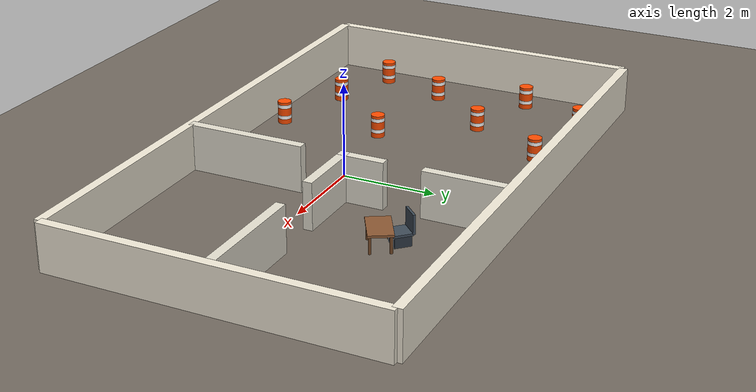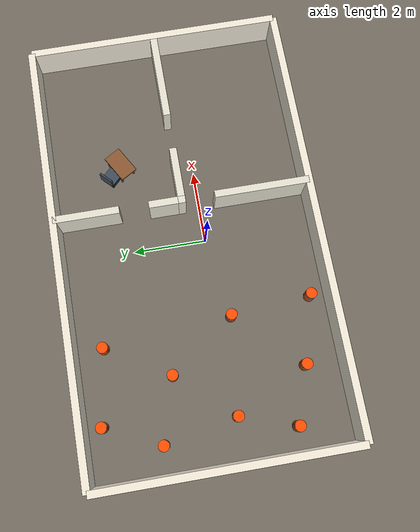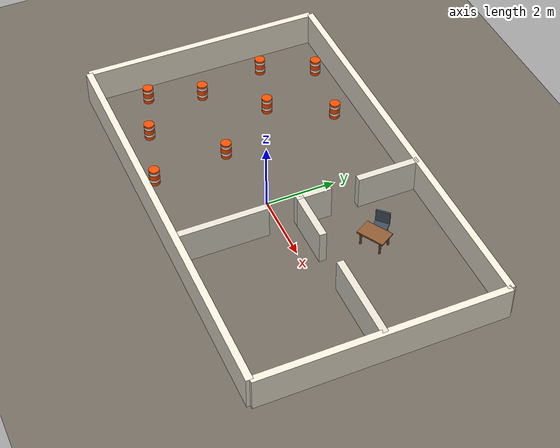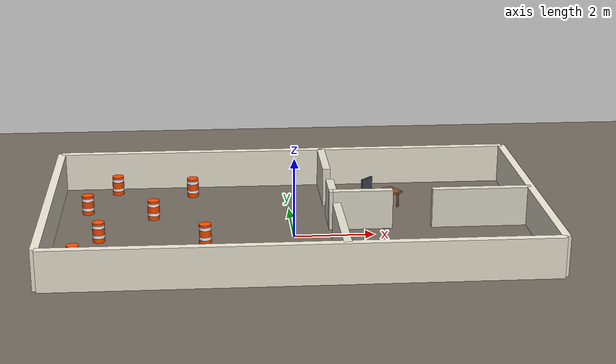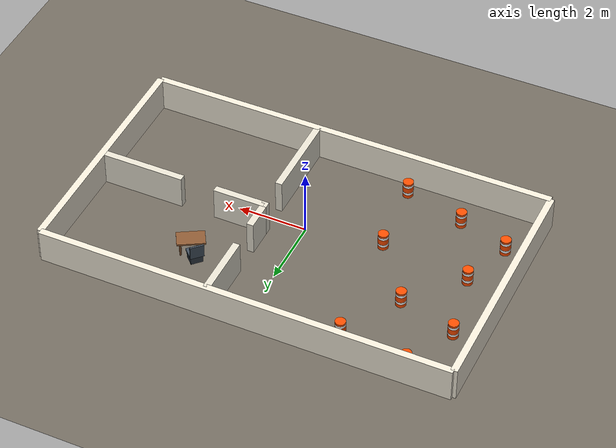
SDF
<?xml version='1.0'?>
<sdf version='1.8'>
  <world name='tilted_planner_hallway'>
    <physics name="1ms" type="ignored">
      <max_step_size>0.001</max_step_size>
      <real_time_factor>1.0</real_time_factor>
    </physics>

    <plugin filename="gz-sim-physics-system" name="gz::sim::systems::Physics"></plugin>
    <plugin filename="gz-sim-user-commands-system" name="gz::sim::systems::UserCommands"></plugin>
    <plugin filename="gz-sim-scene-broadcaster-system" name="gz::sim::systems::SceneBroadcaster"></plugin>

    <gravity>0 0 -9.8</gravity>

    <!-- Lighting -->
    <light type="directional" name="sun">
      <cast_shadows>true</cast_shadows>
      <pose>0 0 10 0 0 0</pose>
      <diffuse>1 1 0.9 1</diffuse>
      <specular>0.5 0.5 0.5 1</specular>
      <direction>-0.5 0.1 -0.9</direction>
    </light>

    <!-- Additional ambient light -->
    <light type="point" name="ambient_light">
      <pose>0 0 5 0 0 0</pose>
      <diffuse>0.4 0.4 0.5 1</diffuse>
      <specular>0.2 0.2 0.2 1</specular>
      <attenuation>
        <range>20</range>
      </attenuation>
    </light>

    <!-- Floor with better texture -->
    <model name='ground_plane'>
      <static>true</static>
      <link name='link'>
        <collision name='collision'>
          <geometry>
            <plane>
              <normal>0 0 1</normal>
              <size>20 20</size>
            </plane>
          </geometry>
        </collision>
        <visual name='visual'>
          <geometry>
            <plane>
              <normal>0 0 1</normal>
              <size>20 20</size>
            </plane>
          </geometry>
          <material>
            <ambient>0.45 0.42 0.38 1</ambient>
            <diffuse>0.45 0.42 0.38 1</diffuse>
            <specular>0.1 0.1 0.1 1</specular>
          </material>
        </visual>
      </link>
    </model>

    <!-- Outer Boundary - Top Wall (Cream/Beige) -->
    <model name='outer_top'>
      <static>true</static>
      <link name='link'>
        <pose>0 4 0.5 0 0 0</pose>
        <visual name='visual'>
          <geometry><box><size>12 0.2 1</size></box></geometry>
          <material>
            <ambient>0.95 0.92 0.85 1</ambient>
            <diffuse>0.95 0.92 0.85 1</diffuse>
            <specular>0.05 0.05 0.05 1</specular>
          </material>
        </visual>
        <collision name='collision'>
          <geometry><box><size>12 0.2 1</size></box></geometry>
        </collision>
      </link>
    </model>

    <!-- Outer Boundary - Bottom Wall -->
    <model name='outer_bottom'>
      <static>true</static>
      <link name='link'>
        <pose>0 -3 0.5 0 0 0</pose>
        <visual name='visual'>
          <geometry><box><size>12 0.2 1</size></box></geometry>
          <material>
            <ambient>0.95 0.92 0.85 1</ambient>
            <diffuse>0.95 0.92 0.85 1</diffuse>
            <specular>0.05 0.05 0.05 1</specular>
          </material>
        </visual>
        <collision name='collision'>
          <geometry><box><size>12 0.2 1</size></box></geometry>
        </collision>
      </link>
    </model>

    <!-- Outer Boundary - Right Wall -->
    <model name='outer_right'>
      <static>true</static>
      <link name='link'>
        <pose>6 0.5 0.5 0 0 0</pose>
        <visual name='visual'>
          <geometry><box><size>0.2 7 1</size></box></geometry>
          <material>
            <ambient>0.95 0.92 0.85 1</ambient>
            <diffuse>0.95 0.92 0.85 1</diffuse>
            <specular>0.05 0.05 0.05 1</specular>
          </material>
        </visual>
        <collision name='collision'>
          <geometry><box><size>0.2 7 1</size></box></geometry>
        </collision>
      </link>
    </model>

    <!-- Outer Boundary - Left Wall -->
    <model name='outer_left'>
      <static>true</static>
      <link name='link'>
        <pose>-6 0.5 0.5 0 0 0</pose>
        <visual name='visual'>
          <geometry><box><size>0.2 7 1</size></box></geometry>
          <material>
            <ambient>0.95 0.92 0.85 1</ambient>
            <diffuse>0.95 0.92 0.85 1</diffuse>
            <specular>0.05 0.05 0.05 1</specular>
          </material>
        </visual>
        <collision name='collision'>
          <geometry><box><size>0.2 7 1</size></box></geometry>
        </collision>
      </link>
    </model>

    <!-- Horizontal divider LEFT part -->
    <model name='horizontal_divider_left'>
      <static>true</static>
      <link name='link'>
        <pose>1.75 0.5 0.5 0 0 0</pose>
        <visual name='visual'>
          <geometry><box><size>1.5 0.2 1</size></box></geometry>
          <material>
            <ambient>0.9 0.88 0.82 1</ambient>
            <diffuse>0.9 0.88 0.82 1</diffuse>
            <specular>0.05 0.05 0.05 1</specular>
          </material>
        </visual>
        <collision name='collision'>
          <geometry><box><size>1.5 0.2 1</size></box></geometry>
        </collision>
      </link>
    </model>

    <!-- Horizontal divider RIGHT part -->
    <model name='horizontal_divider_right'>
      <static>true</static>
      <link name='link'>
        <pose>4.75 0.5 0.5 0 0 0</pose>
        <visual name='visual'>
          <geometry><box><size>2.5 0.2 1</size></box></geometry>
          <material>
            <ambient>0.9 0.88 0.82 1</ambient>
            <diffuse>0.9 0.88 0.82 1</diffuse>
            <specular>0.05 0.05 0.05 1</specular>
          </material>
        </visual>
        <collision name='collision'>
          <geometry><box><size>2.5 0.2 1</size></box></geometry>
        </collision>
      </link>
    </model>

    <!-- Vertical separator walls -->
    <model name='separator_bottom'>
      <static>true</static>
      <link name='link'>
        <pose>1 -1.7 0.5 0 0 0</pose>
        <visual name='visual'>
          <geometry><box><size>0.2 2.6 1</size></box></geometry>
          <material>
            <ambient>0.9 0.88 0.82 1</ambient>
            <diffuse>0.9 0.88 0.82 1</diffuse>
            <specular>0.05 0.05 0.05 1</specular>
          </material>
        </visual>
        <collision name='collision'>
          <geometry><box><size>0.2 2.6 1</size></box></geometry>
        </collision>
      </link>
    </model>

    <model name='separator_middle'>
      <static>true</static>
      <link name='link'>
        <pose>1 0.5 0.5 0 0 0</pose>
        <visual name='visual'>
          <geometry><box><size>0.2 0.2 1</size></box></geometry>
          <material>
            <ambient>0.9 0.88 0.82 1</ambient>
            <diffuse>0.9 0.88 0.82 1</diffuse>
            <specular>0.05 0.05 0.05 1</specular>
          </material>
        </visual>
        <collision name='collision'>
          <geometry><box><size>0.2 0.2 1</size></box></geometry>
        </collision>
      </link>
    </model>

    <model name='separator_between_doors'>
      <static>true</static>
      <link name='link'>
        <pose>1 1 0.5 0 0 0</pose>
        <visual name='visual'>
          <geometry><box><size>0.2 0.8 1</size></box></geometry>
          <material>
            <ambient>0.9 0.88 0.82 1</ambient>
            <diffuse>0.9 0.88 0.82 1</diffuse>
            <specular>0.05 0.05 0.05 1</specular>
          </material>
        </visual>
        <collision name='collision'>
          <geometry><box><size>0.2 0.8 1</size></box></geometry>
        </collision>
      </link>
    </model>

    <model name='separator_top'>
      <static>true</static>
      <link name='link'>
        <pose>1 3.1 0.5 0 0 0</pose>
        <visual name='visual'>
          <geometry><box><size>0.2 1.8 1</size></box></geometry>
          <material>
            <ambient>0.9 0.88 0.82 1</ambient>
            <diffuse>0.9 0.88 0.82 1</diffuse>
            <specular>0.05 0.05 0.05 1</specular>
          </material>
        </visual>
        <collision name='collision'>
          <geometry><box><size>0.2 1.8 1</size></box></geometry>
        </collision>
      </link>
    </model>

  <!-- Table -->
  <model name='table'>
    <static>true</static>
    <pose>2.5 2.0 0 0 0 0.524</pose>
    <link name='link'>
      <visual name='table_top'>
        <pose>0 0 0.4 0 0 0</pose>
        <geometry>
          <box>
            <size>0.8 0.5 0.05</size>
          </box>
        </geometry>
        <material>
          <ambient>0.55 0.35 0.2 1</ambient>
          <diffuse>0.55 0.35 0.2 1</diffuse>
          <specular>0.3 0.3 0.3 1</specular>
        </material>
      </visual>
      <visual name='leg1'>
        <pose>0.3 0.2 0.2 0 0 0</pose>
        <geometry>
          <cylinder>
            <radius>0.03</radius>
            <length>0.4</length>
          </cylinder>
        </geometry>
        <material>
          <ambient>0.45 0.28 0.15 1</ambient>
          <diffuse>0.45 0.28 0.15 1</diffuse>
        </material>
      </visual>
      <visual name='leg2'>
        <pose>-0.3 0.2 0.2 0 0 0</pose>
        <geometry>
          <cylinder>
            <radius>0.03</radius>
            <length>0.4</length>
          </cylinder>
        </geometry>
        <material>
          <ambient>0.45 0.28 0.15 1</ambient>
          <diffuse>0.45 0.28 0.15 1</diffuse>
        </material>
      </visual>
      <visual name='leg3'>
        <pose>0.3 -0.2 0.2 0 0 0</pose>
        <geometry>
          <cylinder>
            <radius>0.03</radius>
            <length>0.4</length>
          </cylinder>
        </geometry>
        <material>
          <ambient>0.45 0.28 0.15 1</ambient>
          <diffuse>0.45 0.28 0.15 1</diffuse>
        </material>
      </visual>
      <visual name='leg4'>
        <pose>-0.3 -0.2 0.2 0 0 0</pose>
        <geometry>
          <cylinder>
            <radius>0.03</radius>
            <length>0.4</length>
          </cylinder>
        </geometry>
        <material>
          <ambient>0.45 0.28 0.15 1</ambient>
          <diffuse>0.45 0.28 0.15 1</diffuse>
        </material>
      </visual>
    </link>
  </model>

  <!-- Chair -->
  <model name='chair'>
    <static>true</static>
    <pose>2.23 2.3 0 0 0 -0.785</pose>
    <link name='link'>
      <visual name='seat'>
        <pose>0 0 0.25 0 0 0</pose>
        <geometry>
          <box>
            <size>0.4 0.4 0.05</size>
          </box>
        </geometry>
        <material>
          <ambient>0.25 0.3 0.35 1</ambient>
          <diffuse>0.25 0.3 0.35 1</diffuse>
          <specular>0.2 0.2 0.2 1</specular>
        </material>
      </visual>
      <visual name='backrest'>
        <pose>-0.2 0 0.45 0 0 0</pose>
        <geometry>
          <box>
            <size>0.05 0.4 0.4</size>
          </box>
        </geometry>
        <material>
          <ambient>0.25 0.3 0.35 1</ambient>
          <diffuse>0.25 0.3 0.35 1</diffuse>
          <specular>0.2 0.2 0.2 1</specular>
        </material>
      </visual>
      <visual name='legs'>
        <pose>0 0 0.125 0 0 0</pose>
        <geometry>
          <box>
            <size>0.35 0.35 0.25</size>
          </box>
        </geometry>
        <material>
          <ambient>0.18 0.22 0.26 1</ambient>
          <diffuse>0.18 0.22 0.26 1</diffuse>
        </material>
      </visual>
    </link>
  </model>
    <!-- TRAFFIC CONES IN LEFT AREA (MAZE) -->

    <!-- Cone 1 -->
    <model name='cone1'>
      <static>true</static>
      <link name='link'>
        <pose>-4.5 3.5 0.25 0 0 0</pose>
        <visual name='cone_body'>
          <geometry>
            <cylinder>
              <radius>0.15</radius>
              <length>0.5</length>
            </cylinder>
          </geometry>
          <material>
            <ambient>1 0.3 0 1</ambient>
            <diffuse>1 0.3 0 1</diffuse>
            <specular>0.3 0.3 0.3 1</specular>
          </material>
        </visual>
        <visual name='white_stripe1'>
          <pose>0 0 0.15 0 0 0</pose>
          <geometry>
            <cylinder>
              <radius>0.151</radius>
              <length>0.08</length>
            </cylinder>
          </geometry>
          <material>
            <ambient>1 1 1 1</ambient>
            <diffuse>1 1 1 1</diffuse>
          </material>
        </visual>
        <visual name='white_stripe2'>
          <pose>0 0 -0.1 0 0 0</pose>
          <geometry>
            <cylinder>
              <radius>0.151</radius>
              <length>0.08</length>
            </cylinder>
          </geometry>
          <material>
            <ambient>1 1 1 1</ambient>
            <diffuse>1 1 1 1</diffuse>
          </material>
        </visual>
        <collision name='collision'>
          <geometry>
            <cylinder>
              <radius>0.15</radius>
              <length>0.5</length>
            </cylinder>
          </geometry>
        </collision>
      </link>
    </model>

    <!-- Cone 2 -->
    <model name='cone2'>
      <static>true</static>
      <link name='link'>
        <pose>-2.5 3.2 0.25 0 0 0</pose>
        <visual name='cone_body'>
          <geometry>
            <cylinder>
              <radius>0.15</radius>
              <length>0.5</length>
            </cylinder>
          </geometry>
          <material>
            <ambient>1 0.3 0 1</ambient>
            <diffuse>1 0.3 0 1</diffuse>
            <specular>0.3 0.3 0.3 1</specular>
          </material>
        </visual>
        <visual name='white_stripe1'>
          <pose>0 0 0.15 0 0 0</pose>
          <geometry>
            <cylinder>
              <radius>0.151</radius>
              <length>0.08</length>
            </cylinder>
          </geometry>
          <material>
            <ambient>1 1 1 1</ambient>
            <diffuse>1 1 1 1</diffuse>
          </material>
        </visual>
        <visual name='white_stripe2'>
          <pose>0 0 -0.1 0 0 0</pose>
          <geometry>
            <cylinder>
              <radius>0.151</radius>
              <length>0.08</length>
            </cylinder>
          </geometry>
          <material>
            <ambient>1 1 1 1</ambient>
            <diffuse>1 1 1 1</diffuse>
          </material>
        </visual>
        <collision name='collision'>
          <geometry>
            <cylinder>
              <radius>0.15</radius>
              <length>0.5</length>
            </cylinder>
          </geometry>
        </collision>
      </link>
    </model>

    <!-- Cone 3 -->
    <model name='cone3'>
      <static>true</static>
      <link name='link'>
        <pose>-5.2 2 0.25 0 0 0</pose>
        <visual name='cone_body'>
          <geometry>
            <cylinder>
              <radius>0.15</radius>
              <length>0.5</length>
            </cylinder>
          </geometry>
          <material>
            <ambient>1 0.3 0 1</ambient>
            <diffuse>1 0.3 0 1</diffuse>
            <specular>0.3 0.3 0.3 1</specular>
          </material>
        </visual>
        <visual name='white_stripe1'>
          <pose>0 0 0.15 0 0 0</pose>
          <geometry>
            <cylinder>
              <radius>0.151</radius>
              <length>0.08</length>
            </cylinder>
          </geometry>
          <material>
            <ambient>1 1 1 1</ambient>
            <diffuse>1 1 1 1</diffuse>
          </material>
        </visual>
        <visual name='white_stripe2'>
          <pose>0 0 -0.1 0 0 0</pose>
          <geometry>
            <cylinder>
              <radius>0.151</radius>
              <length>0.08</length>
            </cylinder>
          </geometry>
          <material>
            <ambient>1 1 1 1</ambient>
            <diffuse>1 1 1 1</diffuse>
          </material>
        </visual>
        <collision name='collision'>
          <geometry>
            <cylinder>
              <radius>0.15</radius>
              <length>0.5</length>
            </cylinder>
          </geometry>
        </collision>
      </link>
    </model>

    <!-- Cone 4 -->
    <model name='cone4'>
      <static>true</static>
      <link name='link'>
        <pose>-3.5 1.5 0.25 0 0 0</pose>
        <visual name='cone_body'>
          <geometry>
            <cylinder>
              <radius>0.15</radius>
              <length>0.5</length>
            </cylinder>
          </geometry>
          <material>
            <ambient>1 0.3 0 1</ambient>
            <diffuse>1 0.3 0 1</diffuse>
            <specular>0.3 0.3 0.3 1</specular>
          </material>
        </visual>
        <visual name='white_stripe1'>
          <pose>0 0 0.15 0 0 0</pose>
          <geometry>
            <cylinder>
              <radius>0.151</radius>
              <length>0.08</length>
            </cylinder>
          </geometry>
          <material>
            <ambient>1 1 1 1</ambient>
            <diffuse>1 1 1 1</diffuse>
          </material>
        </visual>
        <visual name='white_stripe2'>
          <pose>0 0 -0.1 0 0 0</pose>
          <geometry>
            <cylinder>
              <radius>0.151</radius>
              <length>0.08</length>
            </cylinder>
          </geometry>
          <material>
            <ambient>1 1 1 1</ambient>
            <diffuse>1 1 1 1</diffuse>
          </material>
        </visual>
        <collision name='collision'>
          <geometry>
            <cylinder>
              <radius>0.15</radius>
              <length>0.5</length>
            </cylinder>
          </geometry>
        </collision>
      </link>
    </model>

    <!-- Cone 5 -->
    <model name='cone5'>
      <static>true</static>
      <link name='link'>
        <pose>-4.8 0 0.25 0 0 0</pose>
        <visual name='cone_body'>
          <geometry>
            <cylinder>
              <radius>0.15</radius>
              <length>0.5</length>
            </cylinder>
          </geometry>
          <material>
            <ambient>1 0.3 0 1</ambient>
            <diffuse>1 0.3 0 1</diffuse>
            <specular>0.3 0.3 0.3 1</specular>
          </material>
        </visual>
        <visual name='white_stripe1'>
          <pose>0 0 0.15 0 0 0</pose>
          <geometry>
            <cylinder>
              <radius>0.151</radius>
              <length>0.08</length>
            </cylinder>
          </geometry>
          <material>
            <ambient>1 1 1 1</ambient>
            <diffuse>1 1 1 1</diffuse>
          </material>
        </visual>
        <visual name='white_stripe2'>
          <pose>0 0 -0.1 0 0 0</pose>
          <geometry>
            <cylinder>
              <radius>0.151</radius>
              <length>0.08</length>
            </cylinder>
          </geometry>
          <material>
            <ambient>1 1 1 1</ambient>
            <diffuse>1 1 1 1</diffuse>
          </material>
        </visual>
        <collision name='collision'>
          <geometry>
            <cylinder>
              <radius>0.15</radius>
              <length>0.5</length>
            </cylinder>
          </geometry>
        </collision>
      </link>
    </model>

    <!-- Cone 6 -->
    <model name='cone6'>
      <static>true</static>
      <link name='link'>
        <pose>-2.2 -0.3 0.25 0 0 0</pose>
        <visual name='cone_body'>
          <geometry>
            <cylinder>
              <radius>0.15</radius>
              <length>0.5</length>
            </cylinder>
          </geometry>
          <material>
            <ambient>1 0.3 0 1</ambient>
            <diffuse>1 0.3 0 1</diffuse>
            <specular>0.3 0.3 0.3 1</specular>
          </material>
        </visual>
        <visual name='white_stripe1'>
          <pose>0 0 0.15 0 0 0</pose>
          <geometry>
            <cylinder>
              <radius>0.151</radius>
              <length>0.08</length>
            </cylinder>
          </geometry>
          <material>
            <ambient>1 1 1 1</ambient>
            <diffuse>1 1 1 1</diffuse>
          </material>
        </visual>
        <visual name='white_stripe2'>
          <pose>0 0 -0.1 0 0 0</pose>
          <geometry>
            <cylinder>
              <radius>0.151</radius>
              <length>0.08</length>
            </cylinder>
          </geometry>
          <material>
            <ambient>1 1 1 1</ambient>
            <diffuse>1 1 1 1</diffuse>
          </material>
        </visual>
        <collision name='collision'>
          <geometry>
            <cylinder>
              <radius>0.15</radius>
              <length>0.5</length>
            </cylinder>
          </geometry>
        </collision>
      </link>
    </model>

    <!-- Cone 7 -->
    <model name='cone7'>
      <static>true</static>
      <link name='link'>
        <pose>-5.3 -1.5 0.25 0 0 0</pose>
        <visual name='cone_body'>
          <geometry>
            <cylinder>
              <radius>0.15</radius>
              <length>0.5</length>
            </cylinder>
          </geometry>
          <material>
            <ambient>1 0.3 0 1</ambient>
            <diffuse>1 0.3 0 1</diffuse>
            <specular>0.3 0.3 0.3 1</specular>
          </material>
        </visual>
        <visual name='white_stripe1'>
          <pose>0 0 0.15 0 0 0</pose>
          <geometry>
            <cylinder>
              <radius>0.151</radius>
              <length>0.08</length>
            </cylinder>
          </geometry>
          <material>
            <ambient>1 1 1 1</ambient>
            <diffuse>1 1 1 1</diffuse>
          </material>
        </visual>
        <visual name='white_stripe2'>
          <pose>0 0 -0.1 0 0 0</pose>
          <geometry>
            <cylinder>
              <radius>0.151</radius>
              <length>0.08</length>
            </cylinder>
          </geometry>
          <material>
            <ambient>1 1 1 1</ambient>
            <diffuse>1 1 1 1</diffuse>
          </material>
        </visual>
        <collision name='collision'>
          <geometry>
            <cylinder>
              <radius>0.15</radius>
              <length>0.5</length>
            </cylinder>
          </geometry>
        </collision>
      </link>
    </model>

    <!-- Cone 8 -->
    <model name='cone8'>
      <static>true</static>
      <link name='link'>
        <pose>-3.8 -2 0.25 0 0 0</pose>
        <visual name='cone_body'>
          <geometry>
            <cylinder>
              <radius>0.15</radius>
              <length>0.5</length>
            </cylinder>
          </geometry>
          <material>
            <ambient>1 0.3 0 1</ambient>
            <diffuse>1 0.3 0 1</diffuse>
            <specular>0.3 0.3 0.3 1</specular>
          </material>
        </visual>
        <visual name='white_stripe1'>
          <pose>0 0 0.15 0 0 0</pose>
          <geometry>
            <cylinder>
              <radius>0.151</radius>
              <length>0.08</length>
            </cylinder>
          </geometry>
          <material>
            <ambient>1 1 1 1</ambient>
            <diffuse>1 1 1 1</diffuse>
          </material>
        </visual>
        <visual name='white_stripe2'>
          <pose>0 0 -0.1 0 0 0</pose>
          <geometry>
            <cylinder>
              <radius>0.151</radius>
              <length>0.08</length>
            </cylinder>
          </geometry>
          <material>
            <ambient>1 1 1 1</ambient>
            <diffuse>1 1 1 1</diffuse>
          </material>
        </visual>
        <collision name='collision'>
          <geometry>
            <cylinder>
              <radius>0.15</radius>
              <length>0.5</length>
            </cylinder>
          </geometry>
        </collision>
      </link>
    </model>

    <!-- Cone 9 -->
    <model name='cone9'>
      <static>true</static>
      <link name='link'>
        <pose>-2 -2.5 0.25 0 0 0</pose>
        <visual name='cone_body'>
          <geometry>
            <cylinder>
              <radius>0.15</radius>
              <length>0.5</length>
            </cylinder>
          </geometry>
          <material>
            <ambient>1 0.3 0 1</ambient>
            <diffuse>1 0.3 0 1</diffuse>
            <specular>0.3 0.3 0.3 1</specular>
          </material>
        </visual>
        <visual name='white_stripe1'>
          <pose>0 0 0.15 0 0 0</pose>
          <geometry>
            <cylinder>
              <radius>0.151</radius>
              <length>0.08</length>
            </cylinder>
          </geometry>
          <material>
            <ambient>1 1 1 1</ambient>
            <diffuse>1 1 1 1</diffuse>
          </material>
        </visual>
        <visual name='white_stripe2'>
          <pose>0 0 -0.1 0 0 0</pose>
          <geometry>
            <cylinder>
              <radius>0.151</radius>
              <length>0.08</length>
            </cylinder>
          </geometry>
          <material>
            <ambient>1 1 1 1</ambient>
            <diffuse>1 1 1 1</diffuse>
          </material>
        </visual>
        <collision name='collision'>
          <geometry>
            <cylinder>
              <radius>0.15</radius>
              <length>0.5</length>
            </cylinder>
          </geometry>
        </collision>
      </link>
    </model>

  </world>
</sdf>
